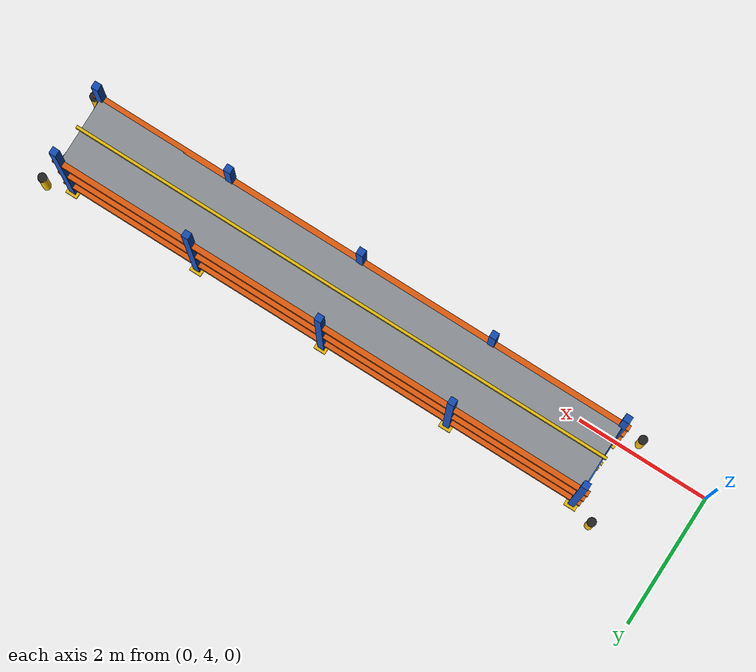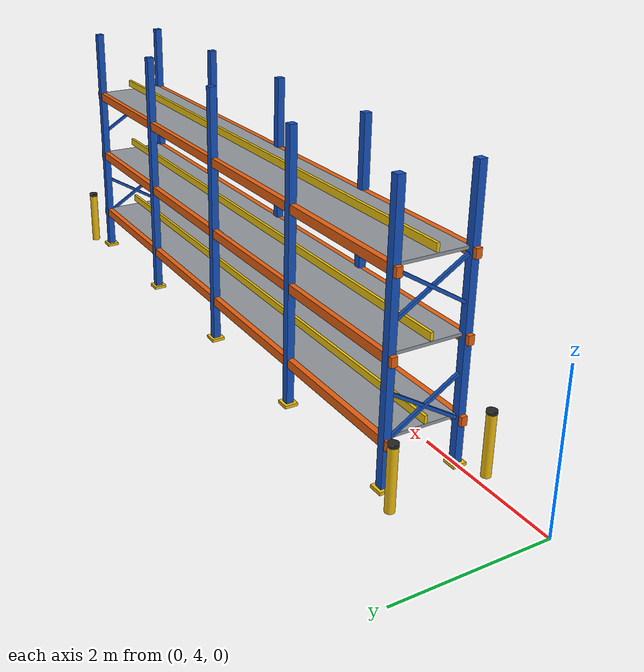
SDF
<sdf version="1.8">
 <world name="warehouse_3d">
  <model name="Rack_E_East">
   <static>true</static>
   <pose>5.50 4.50 0 0 0 0</pose>
   <link name="col_0_0">
    <pose>-4.0000 -0.5000 1.8000 0.0000 0.0000 0.0000</pose>
    <collision name="col_0_0_col"><geometry><box><size>0.1000 0.1000 3.6000</size></box></geometry></collision>
    <visual name="col_0_0_vis">
     <geometry><box><size>0.1000 0.1000 3.6000</size></box></geometry>
     <material>
      <ambient>0.052 0.208 0.488 1.00</ambient>
      <diffuse>0.080 0.320 0.750 1.00</diffuse>
      <specular>0.15 0.15 0.15 1.0</specular>
     </material>
    </visual>
   </link>
   <link name="foot_0_0">
    <pose>-4.0000 -0.5000 0.0200 0.0000 0.0000 0.0000</pose>
    <collision name="foot_0_0_col"><geometry><box><size>0.1800 0.1800 0.0400</size></box></geometry></collision>
    <visual name="foot_0_0_vis">
     <geometry><box><size>0.1800 0.1800 0.0400</size></box></geometry>
     <material>
      <ambient>0.617 0.488 0.033 1.00</ambient>
      <diffuse>0.950 0.750 0.050 1.00</diffuse>
      <specular>0.15 0.15 0.15 1.0</specular>
     </material>
    </visual>
   </link>
   <link name="col_0_1">
    <pose>-4.0000 0.5000 1.8000 0.0000 0.0000 0.0000</pose>
    <collision name="col_0_1_col"><geometry><box><size>0.1000 0.1000 3.6000</size></box></geometry></collision>
    <visual name="col_0_1_vis">
     <geometry><box><size>0.1000 0.1000 3.6000</size></box></geometry>
     <material>
      <ambient>0.052 0.208 0.488 1.00</ambient>
      <diffuse>0.080 0.320 0.750 1.00</diffuse>
      <specular>0.15 0.15 0.15 1.0</specular>
     </material>
    </visual>
   </link>
   <link name="foot_0_1">
    <pose>-4.0000 0.5000 0.0200 0.0000 0.0000 0.0000</pose>
    <collision name="foot_0_1_col"><geometry><box><size>0.1800 0.1800 0.0400</size></box></geometry></collision>
    <visual name="foot_0_1_vis">
     <geometry><box><size>0.1800 0.1800 0.0400</size></box></geometry>
     <material>
      <ambient>0.617 0.488 0.033 1.00</ambient>
      <diffuse>0.950 0.750 0.050 1.00</diffuse>
      <specular>0.15 0.15 0.15 1.0</specular>
     </material>
    </visual>
   </link>
   <link name="col_1_0">
    <pose>-2.0000 -0.5000 1.8000 0.0000 0.0000 0.0000</pose>
    <collision name="col_1_0_col"><geometry><box><size>0.1000 0.1000 3.6000</size></box></geometry></collision>
    <visual name="col_1_0_vis">
     <geometry><box><size>0.1000 0.1000 3.6000</size></box></geometry>
     <material>
      <ambient>0.052 0.208 0.488 1.00</ambient>
      <diffuse>0.080 0.320 0.750 1.00</diffuse>
      <specular>0.15 0.15 0.15 1.0</specular>
     </material>
    </visual>
   </link>
   <link name="foot_1_0">
    <pose>-2.0000 -0.5000 0.0200 0.0000 0.0000 0.0000</pose>
    <collision name="foot_1_0_col"><geometry><box><size>0.1800 0.1800 0.0400</size></box></geometry></collision>
    <visual name="foot_1_0_vis">
     <geometry><box><size>0.1800 0.1800 0.0400</size></box></geometry>
     <material>
      <ambient>0.617 0.488 0.033 1.00</ambient>
      <diffuse>0.950 0.750 0.050 1.00</diffuse>
      <specular>0.15 0.15 0.15 1.0</specular>
     </material>
    </visual>
   </link>
   <link name="col_1_1">
    <pose>-2.0000 0.5000 1.8000 0.0000 0.0000 0.0000</pose>
    <collision name="col_1_1_col"><geometry><box><size>0.1000 0.1000 3.6000</size></box></geometry></collision>
    <visual name="col_1_1_vis">
     <geometry><box><size>0.1000 0.1000 3.6000</size></box></geometry>
     <material>
      <ambient>0.052 0.208 0.488 1.00</ambient>
      <diffuse>0.080 0.320 0.750 1.00</diffuse>
      <specular>0.15 0.15 0.15 1.0</specular>
     </material>
    </visual>
   </link>
   <link name="foot_1_1">
    <pose>-2.0000 0.5000 0.0200 0.0000 0.0000 0.0000</pose>
    <collision name="foot_1_1_col"><geometry><box><size>0.1800 0.1800 0.0400</size></box></geometry></collision>
    <visual name="foot_1_1_vis">
     <geometry><box><size>0.1800 0.1800 0.0400</size></box></geometry>
     <material>
      <ambient>0.617 0.488 0.033 1.00</ambient>
      <diffuse>0.950 0.750 0.050 1.00</diffuse>
      <specular>0.15 0.15 0.15 1.0</specular>
     </material>
    </visual>
   </link>
   <link name="col_2_0">
    <pose>0.0000 -0.5000 1.8000 0.0000 0.0000 0.0000</pose>
    <collision name="col_2_0_col"><geometry><box><size>0.1000 0.1000 3.6000</size></box></geometry></collision>
    <visual name="col_2_0_vis">
     <geometry><box><size>0.1000 0.1000 3.6000</size></box></geometry>
     <material>
      <ambient>0.052 0.208 0.488 1.00</ambient>
      <diffuse>0.080 0.320 0.750 1.00</diffuse>
      <specular>0.15 0.15 0.15 1.0</specular>
     </material>
    </visual>
   </link>
   <link name="foot_2_0">
    <pose>0.0000 -0.5000 0.0200 0.0000 0.0000 0.0000</pose>
    <collision name="foot_2_0_col"><geometry><box><size>0.1800 0.1800 0.0400</size></box></geometry></collision>
    <visual name="foot_2_0_vis">
     <geometry><box><size>0.1800 0.1800 0.0400</size></box></geometry>
     <material>
      <ambient>0.617 0.488 0.033 1.00</ambient>
      <diffuse>0.950 0.750 0.050 1.00</diffuse>
      <specular>0.15 0.15 0.15 1.0</specular>
     </material>
    </visual>
   </link>
   <link name="col_2_1">
    <pose>0.0000 0.5000 1.8000 0.0000 0.0000 0.0000</pose>
    <collision name="col_2_1_col"><geometry><box><size>0.1000 0.1000 3.6000</size></box></geometry></collision>
    <visual name="col_2_1_vis">
     <geometry><box><size>0.1000 0.1000 3.6000</size></box></geometry>
     <material>
      <ambient>0.052 0.208 0.488 1.00</ambient>
      <diffuse>0.080 0.320 0.750 1.00</diffuse>
      <specular>0.15 0.15 0.15 1.0</specular>
     </material>
    </visual>
   </link>
   <link name="foot_2_1">
    <pose>0.0000 0.5000 0.0200 0.0000 0.0000 0.0000</pose>
    <collision name="foot_2_1_col"><geometry><box><size>0.1800 0.1800 0.0400</size></box></geometry></collision>
    <visual name="foot_2_1_vis">
     <geometry><box><size>0.1800 0.1800 0.0400</size></box></geometry>
     <material>
      <ambient>0.617 0.488 0.033 1.00</ambient>
      <diffuse>0.950 0.750 0.050 1.00</diffuse>
      <specular>0.15 0.15 0.15 1.0</specular>
     </material>
    </visual>
   </link>
   <link name="col_3_0">
    <pose>2.0000 -0.5000 1.8000 0.0000 0.0000 0.0000</pose>
    <collision name="col_3_0_col"><geometry><box><size>0.1000 0.1000 3.6000</size></box></geometry></collision>
    <visual name="col_3_0_vis">
     <geometry><box><size>0.1000 0.1000 3.6000</size></box></geometry>
     <material>
      <ambient>0.052 0.208 0.488 1.00</ambient>
      <diffuse>0.080 0.320 0.750 1.00</diffuse>
      <specular>0.15 0.15 0.15 1.0</specular>
     </material>
    </visual>
   </link>
   <link name="foot_3_0">
    <pose>2.0000 -0.5000 0.0200 0.0000 0.0000 0.0000</pose>
    <collision name="foot_3_0_col"><geometry><box><size>0.1800 0.1800 0.0400</size></box></geometry></collision>
    <visual name="foot_3_0_vis">
     <geometry><box><size>0.1800 0.1800 0.0400</size></box></geometry>
     <material>
      <ambient>0.617 0.488 0.033 1.00</ambient>
      <diffuse>0.950 0.750 0.050 1.00</diffuse>
      <specular>0.15 0.15 0.15 1.0</specular>
     </material>
    </visual>
   </link>
   <link name="col_3_1">
    <pose>2.0000 0.5000 1.8000 0.0000 0.0000 0.0000</pose>
    <collision name="col_3_1_col"><geometry><box><size>0.1000 0.1000 3.6000</size></box></geometry></collision>
    <visual name="col_3_1_vis">
     <geometry><box><size>0.1000 0.1000 3.6000</size></box></geometry>
     <material>
      <ambient>0.052 0.208 0.488 1.00</ambient>
      <diffuse>0.080 0.320 0.750 1.00</diffuse>
      <specular>0.15 0.15 0.15 1.0</specular>
     </material>
    </visual>
   </link>
   <link name="foot_3_1">
    <pose>2.0000 0.5000 0.0200 0.0000 0.0000 0.0000</pose>
    <collision name="foot_3_1_col"><geometry><box><size>0.1800 0.1800 0.0400</size></box></geometry></collision>
    <visual name="foot_3_1_vis">
     <geometry><box><size>0.1800 0.1800 0.0400</size></box></geometry>
     <material>
      <ambient>0.617 0.488 0.033 1.00</ambient>
      <diffuse>0.950 0.750 0.050 1.00</diffuse>
      <specular>0.15 0.15 0.15 1.0</specular>
     </material>
    </visual>
   </link>
   <link name="col_4_0">
    <pose>4.0000 -0.5000 1.8000 0.0000 0.0000 0.0000</pose>
    <collision name="col_4_0_col"><geometry><box><size>0.1000 0.1000 3.6000</size></box></geometry></collision>
    <visual name="col_4_0_vis">
     <geometry><box><size>0.1000 0.1000 3.6000</size></box></geometry>
     <material>
      <ambient>0.052 0.208 0.488 1.00</ambient>
      <diffuse>0.080 0.320 0.750 1.00</diffuse>
      <specular>0.15 0.15 0.15 1.0</specular>
     </material>
    </visual>
   </link>
   <link name="foot_4_0">
    <pose>4.0000 -0.5000 0.0200 0.0000 0.0000 0.0000</pose>
    <collision name="foot_4_0_col"><geometry><box><size>0.1800 0.1800 0.0400</size></box></geometry></collision>
    <visual name="foot_4_0_vis">
     <geometry><box><size>0.1800 0.1800 0.0400</size></box></geometry>
     <material>
      <ambient>0.617 0.488 0.033 1.00</ambient>
      <diffuse>0.950 0.750 0.050 1.00</diffuse>
      <specular>0.15 0.15 0.15 1.0</specular>
     </material>
    </visual>
   </link>
   <link name="col_4_1">
    <pose>4.0000 0.5000 1.8000 0.0000 0.0000 0.0000</pose>
    <collision name="col_4_1_col"><geometry><box><size>0.1000 0.1000 3.6000</size></box></geometry></collision>
    <visual name="col_4_1_vis">
     <geometry><box><size>0.1000 0.1000 3.6000</size></box></geometry>
     <material>
      <ambient>0.052 0.208 0.488 1.00</ambient>
      <diffuse>0.080 0.320 0.750 1.00</diffuse>
      <specular>0.15 0.15 0.15 1.0</specular>
     </material>
    </visual>
   </link>
   <link name="foot_4_1">
    <pose>4.0000 0.5000 0.0200 0.0000 0.0000 0.0000</pose>
    <collision name="foot_4_1_col"><geometry><box><size>0.1800 0.1800 0.0400</size></box></geometry></collision>
    <visual name="foot_4_1_vis">
     <geometry><box><size>0.1800 0.1800 0.0400</size></box></geometry>
     <material>
      <ambient>0.617 0.488 0.033 1.00</ambient>
      <diffuse>0.950 0.750 0.050 1.00</diffuse>
      <specular>0.15 0.15 0.15 1.0</specular>
     </material>
    </visual>
   </link>
   <link name="x_brace_low_1_w">
    <pose>-4.0000 0.0000 0.9000 0.5500 0.0000 0.0000</pose>
    <visual name="x_brace_low_1_w_vis">
     <geometry><box><size>0.0400 1.0500 0.0400</size></box></geometry>
     <material>
      <ambient>0.052 0.208 0.488 1.00</ambient>
      <diffuse>0.080 0.320 0.750 1.00</diffuse>
      <specular>0.15 0.15 0.15 1.0</specular>
     </material>
    </visual>
   </link>
   <link name="x_brace_low_2_w">
    <pose>-4.0000 0.0000 0.9000 -0.5500 0.0000 0.0000</pose>
    <visual name="x_brace_low_2_w_vis">
     <geometry><box><size>0.0400 1.0500 0.0400</size></box></geometry>
     <material>
      <ambient>0.052 0.208 0.488 1.00</ambient>
      <diffuse>0.080 0.320 0.750 1.00</diffuse>
      <specular>0.15 0.15 0.15 1.0</specular>
     </material>
    </visual>
   </link>
   <link name="x_brace_hi_1_w">
    <pose>-4.0000 0.0000 2.3000 0.5500 0.0000 0.0000</pose>
    <visual name="x_brace_hi_1_w_vis">
     <geometry><box><size>0.0400 1.0500 0.0400</size></box></geometry>
     <material>
      <ambient>0.052 0.208 0.488 1.00</ambient>
      <diffuse>0.080 0.320 0.750 1.00</diffuse>
      <specular>0.15 0.15 0.15 1.0</specular>
     </material>
    </visual>
   </link>
   <link name="x_brace_hi_2_w">
    <pose>-4.0000 0.0000 2.3000 -0.5500 0.0000 0.0000</pose>
    <visual name="x_brace_hi_2_w_vis">
     <geometry><box><size>0.0400 1.0500 0.0400</size></box></geometry>
     <material>
      <ambient>0.052 0.208 0.488 1.00</ambient>
      <diffuse>0.080 0.320 0.750 1.00</diffuse>
      <specular>0.15 0.15 0.15 1.0</specular>
     </material>
    </visual>
   </link>
   <link name="x_brace_low_1_e">
    <pose>4.0000 0.0000 0.9000 0.5500 0.0000 0.0000</pose>
    <visual name="x_brace_low_1_e_vis">
     <geometry><box><size>0.0400 1.0500 0.0400</size></box></geometry>
     <material>
      <ambient>0.052 0.208 0.488 1.00</ambient>
      <diffuse>0.080 0.320 0.750 1.00</diffuse>
      <specular>0.15 0.15 0.15 1.0</specular>
     </material>
    </visual>
   </link>
   <link name="x_brace_low_2_e">
    <pose>4.0000 0.0000 0.9000 -0.5500 0.0000 0.0000</pose>
    <visual name="x_brace_low_2_e_vis">
     <geometry><box><size>0.0400 1.0500 0.0400</size></box></geometry>
     <material>
      <ambient>0.052 0.208 0.488 1.00</ambient>
      <diffuse>0.080 0.320 0.750 1.00</diffuse>
      <specular>0.15 0.15 0.15 1.0</specular>
     </material>
    </visual>
   </link>
   <link name="x_brace_hi_1_e">
    <pose>4.0000 0.0000 2.3000 0.5500 0.0000 0.0000</pose>
    <visual name="x_brace_hi_1_e_vis">
     <geometry><box><size>0.0400 1.0500 0.0400</size></box></geometry>
     <material>
      <ambient>0.052 0.208 0.488 1.00</ambient>
      <diffuse>0.080 0.320 0.750 1.00</diffuse>
      <specular>0.15 0.15 0.15 1.0</specular>
     </material>
    </visual>
   </link>
   <link name="x_brace_hi_2_e">
    <pose>4.0000 0.0000 2.3000 -0.5500 0.0000 0.0000</pose>
    <visual name="x_brace_hi_2_e_vis">
     <geometry><box><size>0.0400 1.0500 0.0400</size></box></geometry>
     <material>
      <ambient>0.052 0.208 0.488 1.00</ambient>
      <diffuse>0.080 0.320 0.750 1.00</diffuse>
      <specular>0.15 0.15 0.15 1.0</specular>
     </material>
    </visual>
   </link>
   <link name="beam_front_0">
    <pose>0.0000 0.5000 0.6000 0.0000 0.0000 0.0000</pose>
    <collision name="beam_front_0_col">
     <geometry><box><size>8.2000 0.0800 0.1200</size></box></geometry>
    </collision>
    <visual name="beam_front_0_vis">
     <geometry><box><size>8.2000 0.0800 0.1200</size></box></geometry>
     <material>
      <ambient>0.598 0.247 0.039 1.00</ambient>
      <diffuse>0.920 0.380 0.060 1.00</diffuse>
      <specular>0.15 0.15 0.15 1.0</specular>
     </material>
    </visual>
   </link>
   <link name="beam_rear_0">
    <pose>0.0000 -0.5000 0.6000 0.0000 0.0000 0.0000</pose>
    <collision name="beam_rear_0_col">
     <geometry><box><size>8.2000 0.0800 0.1200</size></box></geometry>
    </collision>
    <visual name="beam_rear_0_vis">
     <geometry><box><size>8.2000 0.0800 0.1200</size></box></geometry>
     <material>
      <ambient>0.598 0.247 0.039 1.00</ambient>
      <diffuse>0.920 0.380 0.060 1.00</diffuse>
      <specular>0.15 0.15 0.15 1.0</specular>
     </material>
    </visual>
   </link>
   <link name="deck_0">
    <pose>0.0000 0.0000 0.6400 0.0000 0.0000 0.0000</pose>
    <collision name="deck_0_col"><geometry><box><size>8.0000 0.9400 0.0400</size></box></geometry></collision>
    <visual name="deck_0_vis">
     <geometry><box><size>8.0000 0.9400 0.0400</size></box></geometry>
     <material>
      <ambient>0.377 0.390 0.403 1.00</ambient>
      <diffuse>0.580 0.600 0.620 1.00</diffuse>
      <specular>0.15 0.15 0.15 1.0</specular>
     </material>
    </visual>
   </link>
   <link name="backstop_0">
    <pose>0.0000 0.0000 0.7500 0.0000 0.0000 0.0000</pose>
    <visual name="backstop_0_vis">
     <geometry><box><size>8.1000 0.0400 0.1000</size></box></geometry>
     <material>
      <ambient>0.617 0.507 0.033 1.00</ambient>
      <diffuse>0.950 0.780 0.050 1.00</diffuse>
      <specular>0.15 0.15 0.15 1.0</specular>
     </material>
    </visual>
   </link>
   <link name="beam_front_1">
    <pose>0.0000 0.5000 1.6000 0.0000 0.0000 0.0000</pose>
    <collision name="beam_front_1_col">
     <geometry><box><size>8.2000 0.0800 0.1200</size></box></geometry>
    </collision>
    <visual name="beam_front_1_vis">
     <geometry><box><size>8.2000 0.0800 0.1200</size></box></geometry>
     <material>
      <ambient>0.598 0.247 0.039 1.00</ambient>
      <diffuse>0.920 0.380 0.060 1.00</diffuse>
      <specular>0.15 0.15 0.15 1.0</specular>
     </material>
    </visual>
   </link>
   <link name="beam_rear_1">
    <pose>0.0000 -0.5000 1.6000 0.0000 0.0000 0.0000</pose>
    <collision name="beam_rear_1_col">
     <geometry><box><size>8.2000 0.0800 0.1200</size></box></geometry>
    </collision>
    <visual name="beam_rear_1_vis">
     <geometry><box><size>8.2000 0.0800 0.1200</size></box></geometry>
     <material>
      <ambient>0.598 0.247 0.039 1.00</ambient>
      <diffuse>0.920 0.380 0.060 1.00</diffuse>
      <specular>0.15 0.15 0.15 1.0</specular>
     </material>
    </visual>
   </link>
   <link name="deck_1">
    <pose>0.0000 0.0000 1.6400 0.0000 0.0000 0.0000</pose>
    <collision name="deck_1_col"><geometry><box><size>8.0000 0.9400 0.0400</size></box></geometry></collision>
    <visual name="deck_1_vis">
     <geometry><box><size>8.0000 0.9400 0.0400</size></box></geometry>
     <material>
      <ambient>0.377 0.390 0.403 1.00</ambient>
      <diffuse>0.580 0.600 0.620 1.00</diffuse>
      <specular>0.15 0.15 0.15 1.0</specular>
     </material>
    </visual>
   </link>
   <link name="backstop_1">
    <pose>0.0000 0.0000 1.7500 0.0000 0.0000 0.0000</pose>
    <visual name="backstop_1_vis">
     <geometry><box><size>8.1000 0.0400 0.1000</size></box></geometry>
     <material>
      <ambient>0.617 0.507 0.033 1.00</ambient>
      <diffuse>0.950 0.780 0.050 1.00</diffuse>
      <specular>0.15 0.15 0.15 1.0</specular>
     </material>
    </visual>
   </link>
   <link name="beam_front_2">
    <pose>0.0000 0.5000 2.6000 0.0000 0.0000 0.0000</pose>
    <collision name="beam_front_2_col">
     <geometry><box><size>8.2000 0.0800 0.1200</size></box></geometry>
    </collision>
    <visual name="beam_front_2_vis">
     <geometry><box><size>8.2000 0.0800 0.1200</size></box></geometry>
     <material>
      <ambient>0.598 0.247 0.039 1.00</ambient>
      <diffuse>0.920 0.380 0.060 1.00</diffuse>
      <specular>0.15 0.15 0.15 1.0</specular>
     </material>
    </visual>
   </link>
   <link name="beam_rear_2">
    <pose>0.0000 -0.5000 2.6000 0.0000 0.0000 0.0000</pose>
    <collision name="beam_rear_2_col">
     <geometry><box><size>8.2000 0.0800 0.1200</size></box></geometry>
    </collision>
    <visual name="beam_rear_2_vis">
     <geometry><box><size>8.2000 0.0800 0.1200</size></box></geometry>
     <material>
      <ambient>0.598 0.247 0.039 1.00</ambient>
      <diffuse>0.920 0.380 0.060 1.00</diffuse>
      <specular>0.15 0.15 0.15 1.0</specular>
     </material>
    </visual>
   </link>
   <link name="deck_2">
    <pose>0.0000 0.0000 2.6400 0.0000 0.0000 0.0000</pose>
    <collision name="deck_2_col"><geometry><box><size>8.0000 0.9400 0.0400</size></box></geometry></collision>
    <visual name="deck_2_vis">
     <geometry><box><size>8.0000 0.9400 0.0400</size></box></geometry>
     <material>
      <ambient>0.377 0.390 0.403 1.00</ambient>
      <diffuse>0.580 0.600 0.620 1.00</diffuse>
      <specular>0.15 0.15 0.15 1.0</specular>
     </material>
    </visual>
   </link>
   <link name="backstop_2">
    <pose>0.0000 0.0000 2.7500 0.0000 0.0000 0.0000</pose>
    <visual name="backstop_2_vis">
     <geometry><box><size>8.1000 0.0400 0.1000</size></box></geometry>
     <material>
      <ambient>0.617 0.507 0.033 1.00</ambient>
      <diffuse>0.950 0.780 0.050 1.00</diffuse>
      <specular>0.15 0.15 0.15 1.0</specular>
     </material>
    </visual>
   </link>
   <link name="bollard_0">
    <pose>-4.3500 -0.6500 0.4000 0.0000 0.0000 0.0000</pose>
    <collision name="bollard_0_col">
     <geometry><cylinder><radius>0.0600</radius><length>0.8000</length></cylinder></geometry>
    </collision>
    <visual name="bollard_0_vis">
     <geometry><cylinder><radius>0.0600</radius><length>0.8000</length></cylinder></geometry>
     <material>
      <ambient>0.617 0.488 0.033 1.00</ambient>
      <diffuse>0.950 0.750 0.050 1.00</diffuse>
      <specular>0.2 0.2 0.2 1.0</specular>
     </material>
    </visual>
   </link>
   <link name="bollard_cap_0">
    <pose>-4.3500 -0.6500 0.8200 0.0000 0.0000 0.0000</pose>
    <collision name="bollard_cap_0_col">
     <geometry><cylinder><radius>0.0650</radius><length>0.0400</length></cylinder></geometry>
    </collision>
    <visual name="bollard_cap_0_vis">
     <geometry><cylinder><radius>0.0650</radius><length>0.0400</length></cylinder></geometry>
     <material>
      <ambient>0.098 0.098 0.098 1.00</ambient>
      <diffuse>0.150 0.150 0.150 1.00</diffuse>
      <specular>0.2 0.2 0.2 1.0</specular>
     </material>
    </visual>
   </link>
   <link name="bollard_1">
    <pose>-4.3500 0.6500 0.4000 0.0000 0.0000 0.0000</pose>
    <collision name="bollard_1_col">
     <geometry><cylinder><radius>0.0600</radius><length>0.8000</length></cylinder></geometry>
    </collision>
    <visual name="bollard_1_vis">
     <geometry><cylinder><radius>0.0600</radius><length>0.8000</length></cylinder></geometry>
     <material>
      <ambient>0.617 0.488 0.033 1.00</ambient>
      <diffuse>0.950 0.750 0.050 1.00</diffuse>
      <specular>0.2 0.2 0.2 1.0</specular>
     </material>
    </visual>
   </link>
   <link name="bollard_cap_1">
    <pose>-4.3500 0.6500 0.8200 0.0000 0.0000 0.0000</pose>
    <collision name="bollard_cap_1_col">
     <geometry><cylinder><radius>0.0650</radius><length>0.0400</length></cylinder></geometry>
    </collision>
    <visual name="bollard_cap_1_vis">
     <geometry><cylinder><radius>0.0650</radius><length>0.0400</length></cylinder></geometry>
     <material>
      <ambient>0.098 0.098 0.098 1.00</ambient>
      <diffuse>0.150 0.150 0.150 1.00</diffuse>
      <specular>0.2 0.2 0.2 1.0</specular>
     </material>
    </visual>
   </link>
   <link name="bollard_2">
    <pose>4.3500 -0.6500 0.4000 0.0000 0.0000 0.0000</pose>
    <collision name="bollard_2_col">
     <geometry><cylinder><radius>0.0600</radius><length>0.8000</length></cylinder></geometry>
    </collision>
    <visual name="bollard_2_vis">
     <geometry><cylinder><radius>0.0600</radius><length>0.8000</length></cylinder></geometry>
     <material>
      <ambient>0.617 0.488 0.033 1.00</ambient>
      <diffuse>0.950 0.750 0.050 1.00</diffuse>
      <specular>0.2 0.2 0.2 1.0</specular>
     </material>
    </visual>
   </link>
   <link name="bollard_cap_2">
    <pose>4.3500 -0.6500 0.8200 0.0000 0.0000 0.0000</pose>
    <collision name="bollard_cap_2_col">
     <geometry><cylinder><radius>0.0650</radius><length>0.0400</length></cylinder></geometry>
    </collision>
    <visual name="bollard_cap_2_vis">
     <geometry><cylinder><radius>0.0650</radius><length>0.0400</length></cylinder></geometry>
     <material>
      <ambient>0.098 0.098 0.098 1.00</ambient>
      <diffuse>0.150 0.150 0.150 1.00</diffuse>
      <specular>0.2 0.2 0.2 1.0</specular>
     </material>
    </visual>
   </link>
   <link name="bollard_3">
    <pose>4.3500 0.6500 0.4000 0.0000 0.0000 0.0000</pose>
    <collision name="bollard_3_col">
     <geometry><cylinder><radius>0.0600</radius><length>0.8000</length></cylinder></geometry>
    </collision>
    <visual name="bollard_3_vis">
     <geometry><cylinder><radius>0.0600</radius><length>0.8000</length></cylinder></geometry>
     <material>
      <ambient>0.617 0.488 0.033 1.00</ambient>
      <diffuse>0.950 0.750 0.050 1.00</diffuse>
      <specular>0.2 0.2 0.2 1.0</specular>
     </material>
    </visual>
   </link>
   <link name="bollard_cap_3">
    <pose>4.3500 0.6500 0.8200 0.0000 0.0000 0.0000</pose>
    <collision name="bollard_cap_3_col">
     <geometry><cylinder><radius>0.0650</radius><length>0.0400</length></cylinder></geometry>
    </collision>
    <visual name="bollard_cap_3_vis">
     <geometry><cylinder><radius>0.0650</radius><length>0.0400</length></cylinder></geometry>
     <material>
      <ambient>0.098 0.098 0.098 1.00</ambient>
      <diffuse>0.150 0.150 0.150 1.00</diffuse>
      <specular>0.2 0.2 0.2 1.0</specular>
     </material>
    </visual>
   </link>
  </model>
 </world>
</sdf>
